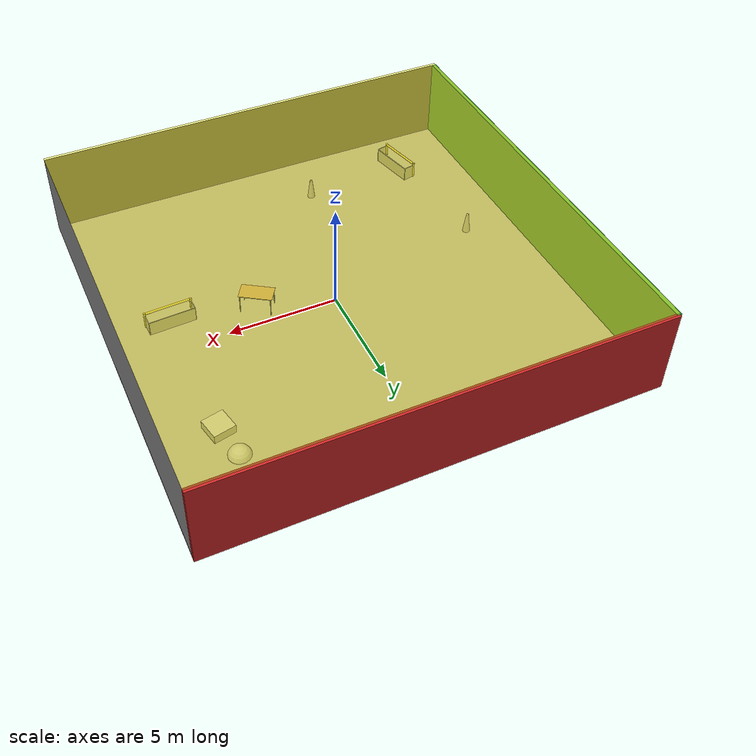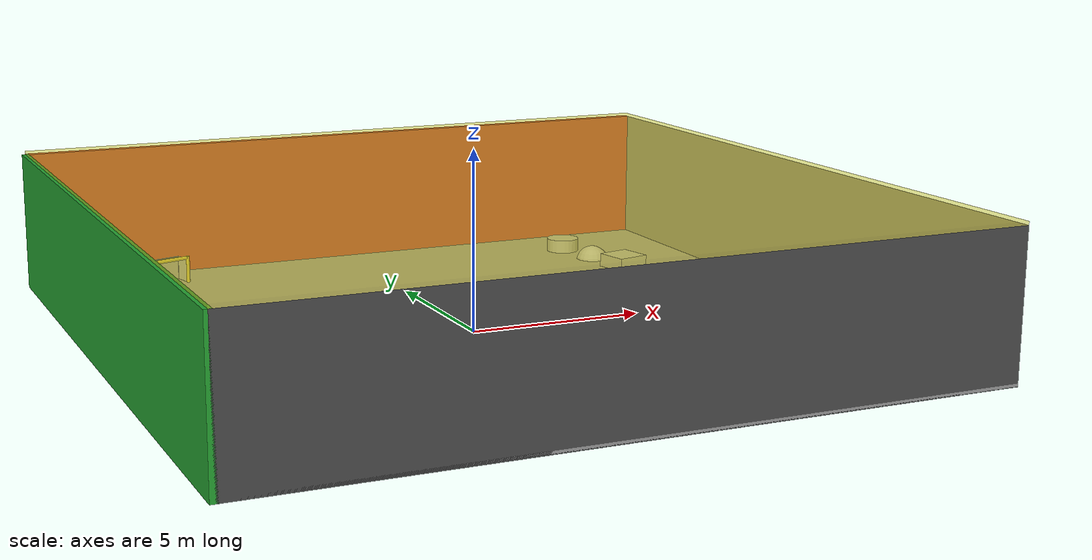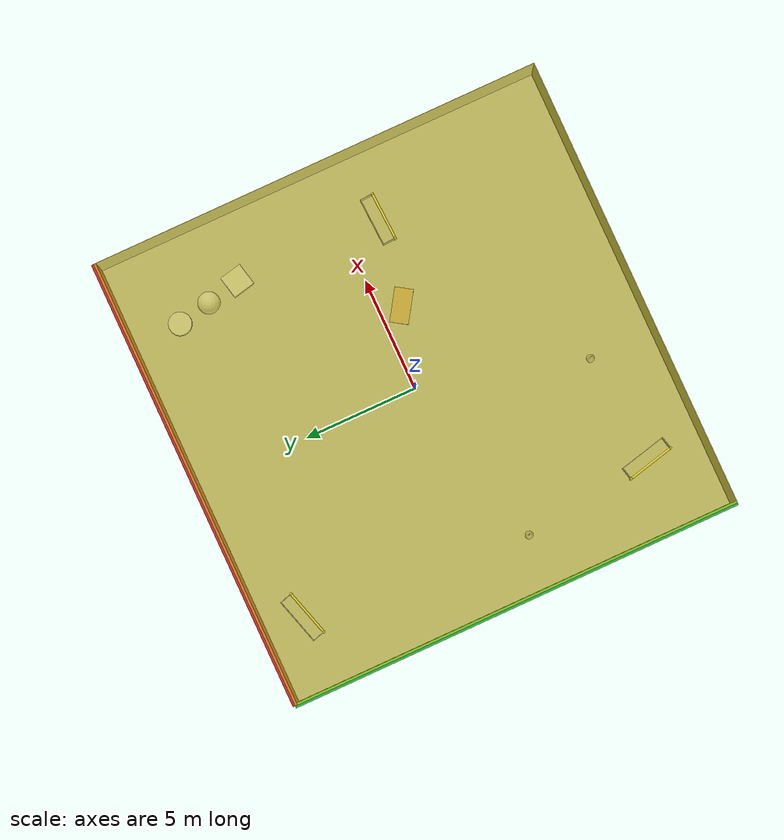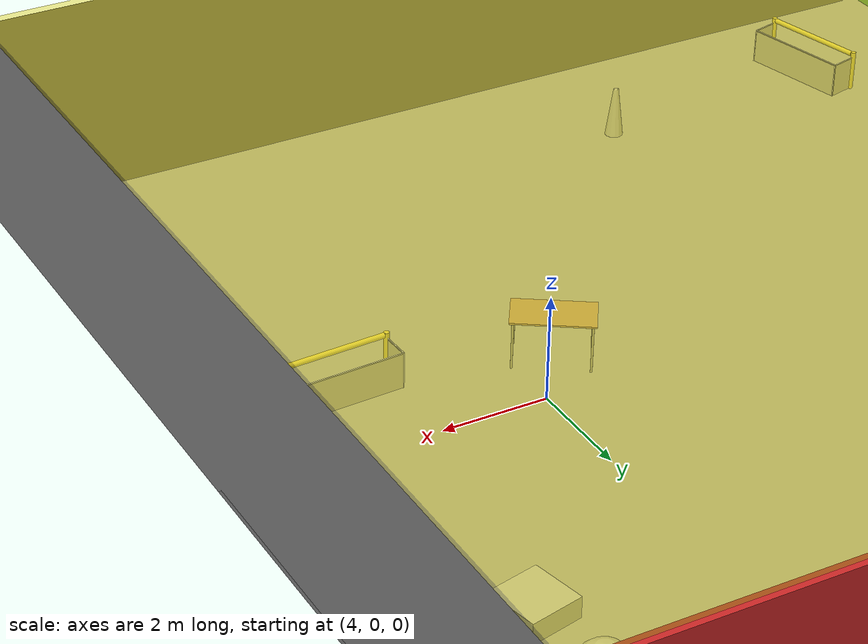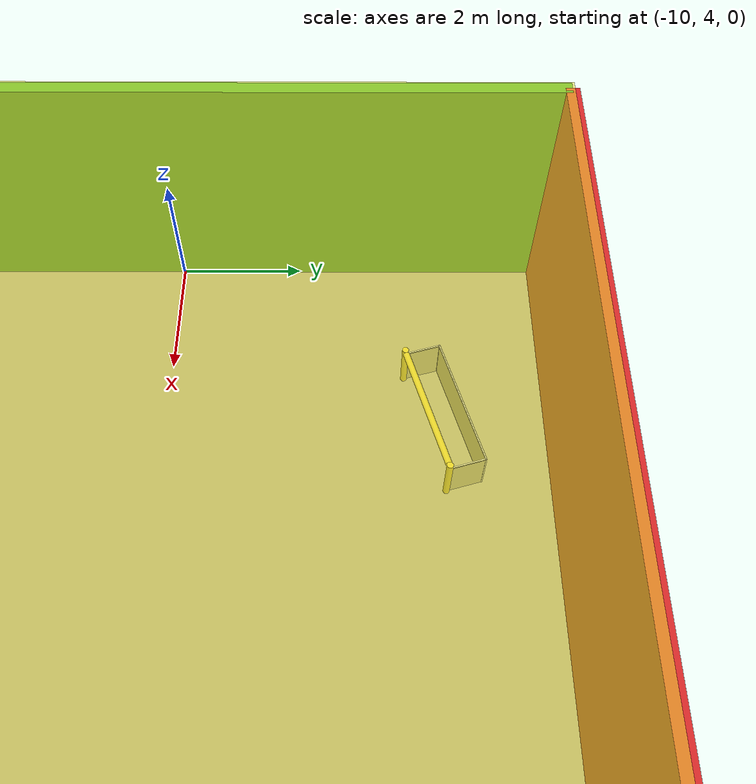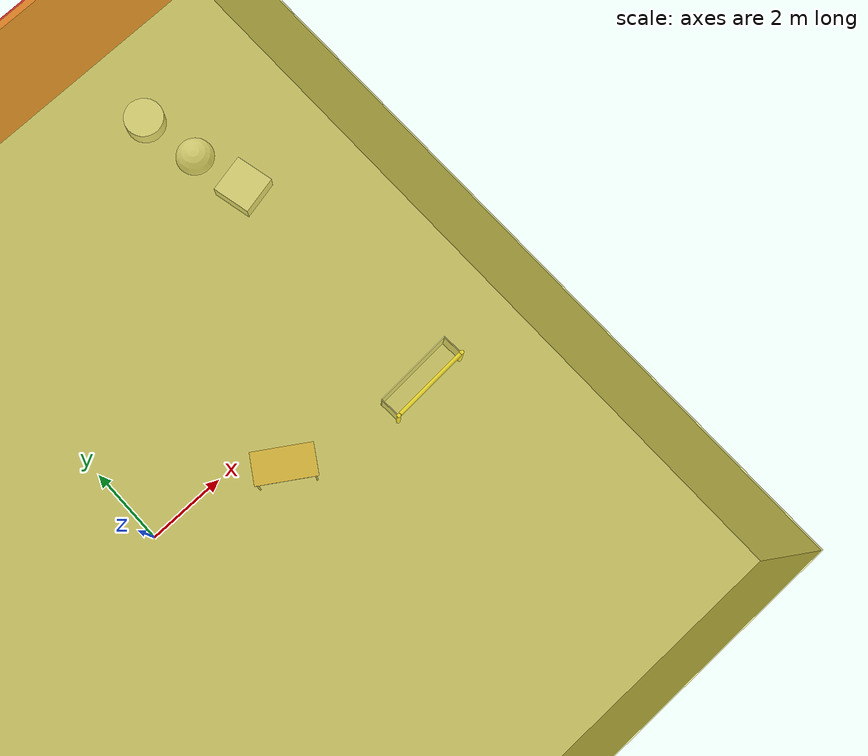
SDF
<sdf version="1.4">
 <world name="default">
  <physics type="ode">
   <max_step_size>0.001</max_step_size>
   <real_time_factor>1</real_time_factor>
   <real_time_update_rate>1000</real_time_update_rate>
   <gravity>0 0 -9.8</gravity>
  </physics>
  <scene><ambient>0.4 0.4 0.4 1</ambient><background>0.7 0.7 0.7 1</background><shadows>1</shadows></scene>
  <model name="Surrounding">
   <static>1</static>
   <link name="Ceiling">
    <collision name="Ceiling_Collision"><geometry><box><size>20 20 0.1</size></box></geometry></collision>
    <visual name="Ceiling_Visual">
     <geometry><box><size>20 20 0.1</size></box></geometry>
     <material>
      <script>
       <uri>file://media/materials/scripts/gazebo.material</uri>
       <name>Gazebo/YellowTransparent</name>
      </script>
     </material>
    </visual>
    <pose>0 0 4.05 0 0 0</pose>
   </link>
   <link name="Wall_South">
    <collision name="Wall_South_Collision">
     <geometry><box><size>20 0 4</size></box></geometry>
     <pose>0 0 2 0 -0 0</pose>
    </collision>
    <visual name="Wall_South_Visual">
     <pose>0 0 2 0 -0 0</pose>
     <geometry><box><size>20 0 4</size></box></geometry>
     <material>
      <script><uri>file://media/materials/scripts/gazebo.material</uri><name>Gazebo/DarkGrey</name></script>
     </material>
    </visual>
    <velocity_decay><linear>0</linear><angular>0</angular></velocity_decay>
    <pose>0 -10 0 0 -0 0</pose>
   </link>
   <link name="Wall_East">
    <collision name="Wall_21_Collision">
     <geometry><box><size>20 0 4</size></box></geometry>
     <pose>0 0 2 0 -0 0</pose>
    </collision>
    <visual name="Wall_21_Visual">
     <pose>0 0 2 0 -0 0</pose>
     <geometry><box><size>20 0 4</size></box></geometry>
     <material>
      <script><uri>file://media/materials/scripts/gazebo.material</uri><name>Gazebo/Grey</name></script>
     </material>
    </visual>
    <velocity_decay><linear>0</linear><angular>0</angular></velocity_decay>
    <pose>10 0 0 0 -0 1.5708</pose>
   </link>
   <link name="Wall_North">
    <collision name="Wall_22_Collision">
     <geometry><box><size>20 0.2 4</size></box></geometry>
     <pose>0 0 2 0 -0 0</pose>
    </collision>
    <visual name="Wall_22_Visual">
     <pose>0 0 2 0 -0 0</pose>
     <geometry><box><size>20 0.2 4</size></box></geometry>
     <material>
      <script><uri>file://media/materials/scripts/gazebo.material</uri><name>Gazebo/Red</name></script>
     </material>
    </visual>
    <velocity_decay><linear>0</linear><angular>0</angular></velocity_decay>
    <pose>0 10 0 0 -0 0</pose>
   </link>
   <link name="Wall_West">
    <collision name="Wall_23_Collision">
     <geometry><box><size>20 0.2 4</size></box></geometry>
     <pose>0 0 2 0 -0 0</pose>
    </collision>
    <visual name="Wall_23_Visual">
     <pose>0 0 2 0 -0 0</pose>
     <geometry><box><size>20 0.2 4</size></box></geometry>
     <material>
      <script><uri>file://media/materials/scripts/gazebo.material</uri><name>Gazebo/GreenGlow</name></script>
     </material>
    </visual>
    <velocity_decay><linear>0</linear><angular>0</angular></velocity_decay>
    <pose>-10 0 0 0 0 -1.5708</pose>
   </link>
   <link name="Ground_link">
    <collision name="collision">
     <pose>0 0 .05 0 -0 0</pose>
     <geometry><box><size>20 20 0.1</size></box></geometry>
    </collision>
    <visual name="visual">
     <pose>0 0 .05 0 -0 0</pose>
     <geometry><box><size>20 20 0.1</size></box></geometry>
     <material>
      <script><uri>file://media/materials/scripts/gazebo.material</uri><name>Gazebo/GreyGradientSky</name></script>
     </material>
    </visual>
   </link>
   <static>1</static>
  </model>
  <spherical_coordinates>
   <surface_model>EARTH_WGS84</surface_model>
   <latitude_deg>0</latitude_deg>
   <longitude_deg>0</longitude_deg>
   <elevation>0</elevation>
   <heading_deg>0</heading_deg>
  </spherical_coordinates>
  <light name="lightball_0" type="diffuse">
   <diffuse>0.8 0.8 0.8 1</diffuse>
   <specular>0.2 0.2 0.2 1</specular>
   <attenuation>
    <range>100</range>
    <constant>0.7</constant>
    <linear>0.01</linear>
    <quadratic>0.001</quadratic>
   </attenuation>
   <direction>-0.5 0.1 -0.9</direction>
   <pose>-5.89533853027 -0.262502182305 1.70779108197 0 0 0</pose>
  </light>
  <light name="lightball_1" type="diffuse">
   <diffuse>0.8 0.8 0.8 1</diffuse>
   <specular>0.2 0.2 0.2 1</specular>
   <attenuation>
    <range>100</range>
    <constant>0.7</constant>
    <linear>0.01</linear>
    <quadratic>0.001</quadratic>
   </attenuation>
   <direction>-0.5 0.1 -0.9</direction>
   <pose>4.9038665584 7.75829106312 2.12229056336 0 0 0</pose>
  </light>
  <light name="lightball_2" type="diffuse">
   <diffuse>0.8 0.8 0.8 1</diffuse>
   <specular>0.2 0.2 0.2 1</specular>
   <attenuation>
    <range>100</range>
    <constant>0.7</constant>
    <linear>0.01</linear>
    <quadratic>0.001</quadratic>
   </attenuation>
   <direction>-0.5 0.1 -0.9</direction>
   <pose>-5.61807152524 3.0882756857 0.78067719873 0 0 0</pose>
  </light>
  <light name="lightball_3" type="diffuse">
   <diffuse>0.8 0.8 0.8 1</diffuse>
   <specular>0.2 0.2 0.2 1</specular>
   <attenuation>
    <range>100</range>
    <constant>0.7</constant>
    <linear>0.01</linear>
    <quadratic>0.001</quadratic>
   </attenuation>
   <direction>-0.5 0.1 -0.9</direction>
   <pose>6.04683531953 -1.88457074203 1.56438818928 0 0 0</pose>
  </light>
  <light name="lightball_4" type="diffuse">
   <diffuse>0.8 0.8 0.8 1</diffuse>
   <specular>0.2 0.2 0.2 1</specular>
   <attenuation>
    <range>100</range>
    <constant>0.7</constant>
    <linear>0.01</linear>
    <quadratic>0.001</quadratic>
   </attenuation>
   <direction>-0.5 0.1 -0.9</direction>
   <pose>-9.93824471319 -8.48624662499 1.97417792758 0 0 0</pose>
  </light>
  <light name="lightball_5" type="diffuse">
   <diffuse>0.8 0.8 0.8 1</diffuse>
   <specular>0.2 0.2 0.2 1</specular>
   <attenuation>
    <range>100</range>
    <constant>0.7</constant>
    <linear>0.01</linear>
    <quadratic>0.001</quadratic>
   </attenuation>
   <direction>-0.5 0.1 -0.9</direction>
   <pose>-8.52810424847 5.43683717629 2.31667973583 0 0 0</pose>
  </light>
  <light name="lightball_6" type="diffuse">
   <diffuse>0.8 0.8 0.8 1</diffuse>
   <specular>0.2 0.2 0.2 1</specular>
   <attenuation>
    <range>100</range>
    <constant>0.7</constant>
    <linear>0.01</linear>
    <quadratic>0.001</quadratic>
   </attenuation>
   <direction>-0.5 0.1 -0.9</direction>
   <pose>7.65174701008 -7.7587106451 2.30578452526 0 0 0</pose>
  </light>
  <light name="lightball_7" type="diffuse">
   <diffuse>0.8 0.8 0.8 1</diffuse>
   <specular>0.2 0.2 0.2 1</specular>
   <attenuation>
    <range>100</range>
    <constant>0.7</constant>
    <linear>0.01</linear>
    <quadratic>0.001</quadratic>
   </attenuation>
   <direction>-0.5 0.1 -0.9</direction>
   <pose>-9.52327702883 -4.79010480879 2.08184418721 0 0 0</pose>
  </light>
  <light name="lightball_8" type="diffuse">
   <diffuse>0.8 0.8 0.8 1</diffuse>
   <specular>0.2 0.2 0.2 1</specular>
   <attenuation>
    <range>100</range>
    <constant>0.7</constant>
    <linear>0.01</linear>
    <quadratic>0.001</quadratic>
   </attenuation>
   <direction>-0.5 0.1 -0.9</direction>
   <pose>-8.29974681686 3.05363110666 1.18514936135 0 0 0</pose>
  </light>
  <light name="lightball_9" type="diffuse">
   <diffuse>0.8 0.8 0.8 1</diffuse>
   <specular>0.2 0.2 0.2 1</specular>
   <attenuation>
    <range>100</range>
    <constant>0.7</constant>
    <linear>0.01</linear>
    <quadratic>0.001</quadratic>
   </attenuation>
   <direction>-0.5 0.1 -0.9</direction>
   <pose>0.750848890605 2.03861524791 1.1175900258 0 0 0</pose>
  </light>
  <light name="lightball_10" type="diffuse">
   <diffuse>0.8 0.8 0.8 1</diffuse>
   <specular>0.2 0.2 0.2 1</specular>
   <attenuation>
    <range>100</range>
    <constant>0.7</constant>
    <linear>0.01</linear>
    <quadratic>0.001</quadratic>
   </attenuation>
   <direction>-0.5 0.1 -0.9</direction>
   <pose>3.571993484 5.21523853748 1.59941685872 0 0 0</pose>
  </light>
  <light name="lightball_11" type="diffuse">
   <diffuse>0.8 0.8 0.8 1</diffuse>
   <specular>0.2 0.2 0.2 1</specular>
   <attenuation>
    <range>100</range>
    <constant>0.7</constant>
    <linear>0.01</linear>
    <quadratic>0.001</quadratic>
   </attenuation>
   <direction>-0.5 0.1 -0.9</direction>
   <pose>8.55327325817 6.50597385709 2.13080583615 0 0 0</pose>
  </light>
  <include>
   <uri>model://robocup_3Dsim_goal</uri>
   <pose>-7.00914010587 -7.64587473689 0 0 0 0.231283259752</pose>
  </include>
  <include>
   <uri>model://construction_cone</uri>
   <pose>-7.59048731499 -1.77849470258 0 0 0 3.02045384395</pose>
  </include>
  <include>
   <uri>model://robocup_3Dsim_goal</uri>
   <pose>-6.68690639605 8.02632301993 0 0 0 1.85541151728</pose>
  </include>
  <include>
   <uri>model://construction_cone</uri>
   <pose>-1.92978000613 -7.22526404051 0 0 0 1.67282871778</pose>
  </include>
  <include><uri>model://table</uri><pose>3.35129325975 -0.914855032885 0 0 0 2.56502578523</pose></include>
  <include>
   <uri>model://robocup_3Dsim_goal</uri>
   <pose>7.11197865665 -1.81488151617 0 0 0 1.61829134354</pose>
  </include>
  <include>
   <uri>model://textured_shapes</uri>
   <pose>6.89763526966 6.37532009185 0 0 0 0.214958619559</pose>
  </include>
 </world>
</sdf>

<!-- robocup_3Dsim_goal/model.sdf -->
<sdf version="1.5">
  <model name="robocup_3d_goal">
    <static>true</static>
    <link name="left_post">
      <pose>0 1.05 0.45 0 0 0</pose>
      <collision name="collision">
        <geometry>
          <cylinder>
            <radius>0.05</radius>
            <length>0.9</length>
          </cylinder>
        </geometry>
      </collision>
      <visual name="visual">
        <geometry>
          <cylinder>
            <radius>0.05</radius>
            <length>0.9</length>
          </cylinder>
        </geometry>
        <material>
          <script>
            <uri>file://media/materials/scripts/gazebo.material</uri>
            <name>Gazebo/ZincYellow</name>
          </script>
        </material>
      </visual>
    </link>
    <link name="left_support_horiz_lower">
      <pose>0.30 1.05 0.01 0 0 0</pose>
      <collision name="collision">
        <geometry>
          <box>
            <size>0.50 0.02 0.02</size>
          </box>
        </geometry>
      </collision>
      <visual name="visual">
        <geometry>
          <box>
            <size>0.50 0.02 0.02</size>
          </box>
        </geometry>
        <material>
          <script>
            <uri>file://media/materials/scripts/gazebo.material</uri>
            <name>Gazebo/White</name>
          </script>
        </material>
      </visual>
    </link>
    <link name="left_support_horiz_upper">
      <pose>0.30 1.05 0.79 0 0 0</pose>
      <collision name="collision">
        <geometry>
          <box>
            <size>0.50 0.02 0.02</size>
          </box>
        </geometry>
      </collision>
      <visual name="visual">
        <geometry>
          <box>
            <size>0.50 0.02 0.02</size>
          </box>
        </geometry>
        <material>
          <script>
            <uri>file://media/materials/scripts/gazebo.material</uri>
            <name>Gazebo/White</name>
          </script>
        </material>
      </visual>
    </link>
    <link name="left_support_vertical">
      <pose>0.56 1.05 0.4 0 1.5708 0</pose>
      <collision name="collision">
        <geometry>
          <box>
            <size>0.80 0.02 0.02</size>
          </box>
        </geometry>
      </collision>
      <visual name="visual">
        <geometry>
          <box>
            <size>0.80 0.02 0.02</size>
          </box>
        </geometry>
        <material>
          <script>
            <uri>file://media/materials/scripts/gazebo.material</uri>
            <name>Gazebo/White</name>
          </script>
        </material>
      </visual>
    </link>
    <link name="right_support_horiz_lower">
      <pose>0.30 -1.05 0.01 0 0 0</pose>
      <collision name="collision">
        <geometry>
          <box>
            <size>0.50 0.02 0.02</size>
          </box>
        </geometry>
      </collision>
      <visual name="visual">
        <geometry>
          <box>
            <size>0.50 0.02 0.02</size>
          </box>
        </geometry>
        <material>
          <script>
            <uri>file://media/materials/scripts/gazebo.material</uri>
            <name>Gazebo/White</name>
          </script>
        </material>
      </visual>
    </link>
    <link name="right_support_horiz_upper">
      <pose>0.30 -1.05 0.79 0 0 0</pose>
      <collision name="collision">
        <geometry>
          <box>
            <size>0.50 0.02 0.02</size>
          </box>
        </geometry>
      </collision>
      <visual name="visual">
        <geometry>
          <box>
            <size>0.50 0.02 0.02</size>
          </box>
        </geometry>
        <material>
          <script>
            <uri>file://media/materials/scripts/gazebo.material</uri>
            <name>Gazebo/White</name>
          </script>
        </material>
      </visual>
    </link>
    <link name="right_support_vertical">
      <pose>0.56 -1.05 0.4 0 1.5708 0</pose>
      <collision name="collision">
        <geometry>
          <box>
            <size>0.80 0.02 0.02</size>
          </box>
        </geometry>
      </collision>
      <visual name="visual">
        <geometry>
          <box>
            <size>0.80 0.02 0.02</size>
          </box>
        </geometry>
        <material>
          <script>
            <uri>file://media/materials/scripts/gazebo.material</uri>
            <name>Gazebo/White</name>
          </script>
        </material>
      </visual>
    </link>
    <link name="center_support_horiz_lower">
      <pose>0.56 0 0.01 0 1.5708 0</pose>
      <collision name="collision">
        <geometry>
          <box>
            <size>0.02 2.08 0.02</size>
          </box>
        </geometry>
      </collision>
      <visual name="visual">
        <geometry>
          <box>
            <size>0.02 2.08 0.02</size>
          </box>
        </geometry>
        <material>
          <script>
            <uri>file://media/materials/scripts/gazebo.material</uri>
            <name>Gazebo/White</name>
          </script>
        </material>
      </visual>
    </link>
    <link name="center_support_horiz_upper">
      <pose>0.56 0 0.79 0 1.5708 0</pose>
      <collision name="collision">
        <geometry>
          <box>
            <size>0.02 2.08 0.02</size>
          </box>
        </geometry>
      </collision>
      <visual name="visual">
        <geometry>
          <box>
            <size>0.02 2.08 0.02</size>
          </box>
        </geometry>
        <material>
          <script>
            <uri>file://media/materials/scripts/gazebo.material</uri>
            <name>Gazebo/White</name>
          </script>
        </material>
      </visual>
    </link>
    <link name="right_post">
      <pose>0 -1.05 0.45 0 0 0</pose>
      <collision name="collision">
        <geometry>
          <cylinder>
            <radius>0.05</radius>
            <length>0.9</length>
          </cylinder>
        </geometry>
      </collision>
      <visual name="visual">
        <geometry>
          <cylinder>
            <radius>0.05</radius>
            <length>0.9</length>
          </cylinder>
        </geometry>
        <material>
          <script>
            <uri>file://media/materials/scripts/gazebo.material</uri>
            <name>Gazebo/ZincYellow</name>
          </script>
        </material>
      </visual>
    </link>
    <link name="crossbar">
      <pose>0 0 0.85 1.57 1.57 0</pose>
      <collision name="collision">
        <geometry>
          <cylinder>
            <radius>0.05</radius>
            <length>2.0</length>
          </cylinder>
        </geometry>
      </collision>
      <visual name="visual">
        <geometry>
          <cylinder>
            <radius>0.05</radius>
            <length>2.0</length>
          </cylinder>
        </geometry>
        <material>
          <script>
            <uri>file://media/materials/scripts/gazebo.material</uri>
            <name>Gazebo/ZincYellow</name>
          </script>
        </material>
      </visual>
    </link>
    <link name="center_net">
      <pose>0.56 0 0.40 0 0 0</pose>
      <collision name="collision">
        <geometry>
          <box>
            <size>0.01 2.1 0.80</size>
          </box>
        </geometry>
      </collision>
      <visual name="visual">
        <geometry>
          <box>
            <size>0.01 2.1 0.80</size>
          </box>
        </geometry>
        <material>
          <script>
            <uri>model://../model_source/models/robocup09_spl_field/materials/scripts/</uri>
            <uri>model://../model_source/models/robocup09_spl_field/materials/textures/</uri>
            <name>RoboCup/Net</name>
          </script>
        </material>
      </visual>
    </link>
    <link name="left_net">
      <pose>0.30 1.05 0.40 0 0 0</pose>
      <collision name="collision">
        <geometry>
          <box>
            <size>0.50 0.01 0.76</size>
          </box>
        </geometry>
      </collision>
      <visual name="visual">
        <geometry>
          <box>
            <size>0.50 0.01 0.76</size>
          </box>
        </geometry>
        <material>
          <script>
            <uri>model://../model_source/models/robocup09_spl_field/materials/scripts/</uri>
            <uri>model://../model_source/models/robocup09_spl_field/materials/textures/</uri>
            <name>RoboCup/Net</name>
          </script>
        </material>
      </visual>
    </link>
    <link name="right_net">
      <pose>0.30 -1.05 0.40 0 0 0</pose>
      <collision name="collision">
        <geometry>
          <box>
            <size>0.50 0.01 0.76</size>
          </box>
        </geometry>
      </collision>
      <visual name="visual">
        <geometry>
          <box>
            <size>0.50 0.01 0.76</size>
          </box>
        </geometry>
        <material>
          <script>
            <uri>model://../model_source/models/robocup09_spl_field/materials/scripts/</uri>
            <uri>model://../model_source/models/robocup09_spl_field/materials/textures/</uri>
            <name>RoboCup/Net</name>
          </script>
        </material>
      </visual>
    </link>
  </model>
</sdf>

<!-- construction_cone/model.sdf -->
<sdf version="1.5">
  <model name="Construction Cone">
    <link name="link">
      <collision name="collision">
        <geometry>
          <mesh>
            <scale>10 10 10</scale>
            <uri>file://isr-testbed/construction_cone/meshes/construction_cone.dae</uri>
          </mesh>
        </geometry>
      </collision>
      <visual name="visual">
        <geometry>
          <mesh>
            <scale>10 10 10</scale>
            <uri>file://isr-testbed/construction_cone/meshes/construction_cone.dae</uri>
          </mesh>
        </geometry>
      </visual>
    </link>
  </model>
</sdf>

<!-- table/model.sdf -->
<sdf version="1.5">
  <model name="table">
    <static>true</static>
    <link name="link">
      <collision name="surface">
        <pose>0 0 1.0 0 0 0</pose>
        <geometry>
          <box>
            <size>1.5 0.8 0.03</size>
          </box>
        </geometry>
        <surface>
          <friction>
            <ode>
              <mu>0.6</mu>
              <mu2>0.6</mu2>
            </ode>
          </friction>
        </surface>
      </collision>
      <visual name="visual1">
        <pose>0 0 1.0 0 0 0</pose>
        <geometry>
          <box>
            <size>1.5 0.8 0.03</size>
          </box>
        </geometry>
        <material>
          <script>
            <uri>model://media/materials/scripts/gazebo.material</uri>
            <name>Gazebo/Wood</name>
          </script>
        </material>
      </visual>
      <collision name="front_left_leg">
        <pose>0.68 0.38 0.5 0 0 0</pose>
        <geometry>
          <cylinder>
            <radius>0.02</radius>
            <length>1.0</length>
          </cylinder>
        </geometry>
      </collision>
      <visual name="front_left_leg">
        <pose>0.68 0.38 0.5 0 0 0</pose>
        <geometry>
          <cylinder>
            <radius>0.02</radius>
            <length>1.0</length>
          </cylinder>
        </geometry>
        <material>
          <script>
            <uri>model://media/materials/scripts/gazebo.material</uri>
            <name>Gazebo/Grey</name>
          </script>
        </material>
      </visual>
      <collision name="front_right_leg">
        <pose>0.68 -0.38 0.5 0 0 0</pose>
        <geometry>
          <cylinder>
            <radius>0.02</radius>
            <length>1.0</length>
          </cylinder>
        </geometry>
      </collision>
      <visual name="front_right_leg">
        <pose>0.68 -0.38 0.5 0 0 0</pose>
        <geometry>
          <cylinder>
            <radius>0.02</radius>
            <length>1.0</length>
          </cylinder>
        </geometry>
        <material>
          <script>
            <uri>model://media/materials/scripts/gazebo.material</uri>
            <name>Gazebo/Grey</name>
          </script>
        </material>
      </visual>
      <collision name="back_right_leg">
        <pose>-0.68 -0.38 0.5 0 0 0</pose>
        <geometry>
          <cylinder>
            <radius>0.02</radius>
            <length>1.0</length>
          </cylinder>
        </geometry>
      </collision>
      <visual name="back_right_leg">
        <pose>-0.68 -0.38 0.5 0 0 0</pose>
        <geometry>
          <cylinder>
            <radius>0.02</radius>
            <length>1.0</length>
          </cylinder>
        </geometry>
        <material>
          <script>
            <uri>model://media/materials/scripts/gazebo.material</uri>
            <name>Gazebo/Grey</name>
          </script>
        </material>
      </visual>
      <collision name="back_left_leg">
        <pose>-0.68 0.38 0.5 0 0 0</pose>
        <geometry>
          <cylinder>
            <radius>0.02</radius>
            <length>1.0</length>
          </cylinder>
        </geometry>
      </collision>
      <visual name="back_left_leg">
        <pose>-0.68 0.38 0.5 0 0 0</pose>
        <geometry>
          <cylinder>
            <radius>0.02</radius>
            <length>1.0</length>
          </cylinder>
        </geometry>
        <material>
          <script>
            <uri>model://media/materials/scripts/gazebo.material</uri>
            <name>Gazebo/Grey</name>
          </script>
        </material>
      </visual>
    </link>
  </model>
</sdf>

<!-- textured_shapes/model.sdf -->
<sdf version="1.6">
  <model name="textured_shapes">
    <pose>0 0 0.5 0 0 0</pose>
    <link name="box">
      <pose>0 -1.5 0 0 0 0</pose>
      <collision name="collision">
        <geometry>
          <box>
            <size>1 1 1</size>
          </box>
        </geometry>
      </collision>
      <visual name="visual">
        <geometry>
          <box>
            <size>1 1 1</size>
          </box>
        </geometry>
        <material>
          <script>
            <uri>model://../model_source/models/textured_shapes/materials/scripts</uri>
            <uri>model://../model_source/models/textured_shapes/materials/textures</uri>
            <name>TexturedShape/Squares</name>
          </script>
        </material>
      </visual>
    </link>
    <link name="sphere">
      <collision name="collision">
        <geometry>
          <sphere>
            <radius>0.5</radius>
          </sphere>
        </geometry>
      </collision>
      <visual name="visual">
        <geometry>
          <sphere>
            <radius>0.5</radius>
          </sphere>
        </geometry>
        <material>
          <script>
            <uri>model://../model_source/models/textured_shapes/materials/scripts</uri>
            <uri>model://../model_source/models/textured_shapes/materials/textures</uri>
            <name>TexturedShape/Squares</name>
          </script>
        </material>
      </visual>
    </link>
    <link name="cylinder">
      <pose>0 1.5 0 0 0 0</pose>
      <collision name="collision">
        <geometry>
          <cylinder>
            <radius>0.5</radius>
            <length>1</length>
          </cylinder>
        </geometry>
      </collision>
      <visual name="visual">
        <geometry>
          <cylinder>
            <radius>0.5</radius>
            <length>1</length>
          </cylinder>
        </geometry>
        <material>
          <script>
            <uri>model://../model_source/models/textured_shapes/materials/scripts</uri>
            <uri>model://../model_source/models/textured_shapes/materials/textures</uri>
            <name>TexturedShape/Squares</name>
          </script>
        </material>
      </visual>
    </link>
  </model>
</sdf>
